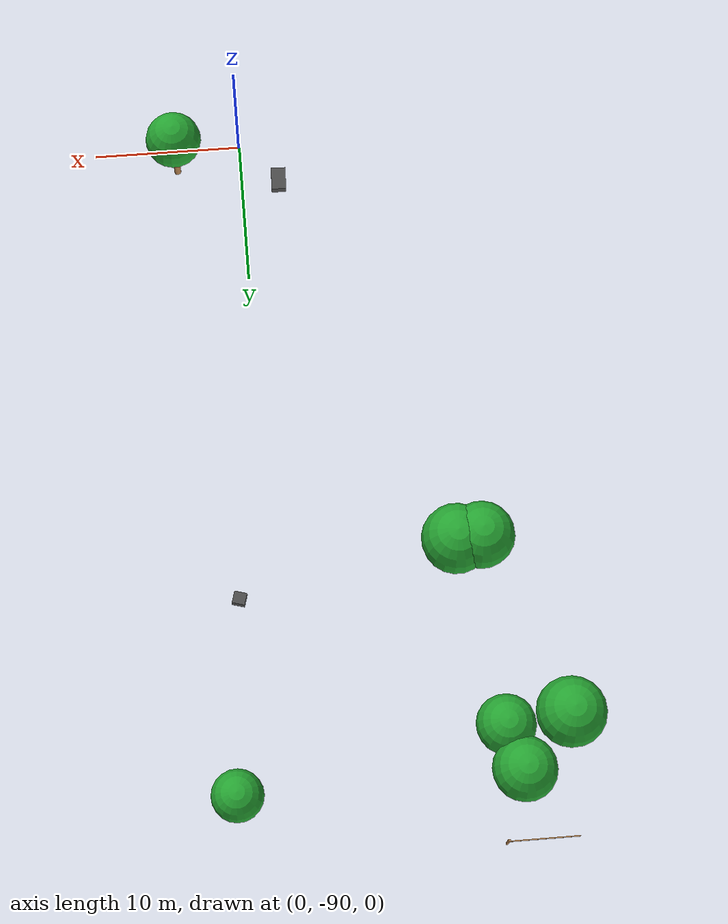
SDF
<sdf version="1.6">
 <world name="outdoor_v2">
  <include><uri>model://sun</uri></include>
  <model name="tree_43">
   <static>true</static>
   <pose>-12.95 -43.45 10.31 0 0 5.241</pose>
   <link name="link">
    <collision name="trunk_c">
     <pose>0 0 1.5 0 0 0</pose>
     <geometry><cylinder><radius>0.22</radius><length>3.0</length></cylinder></geometry>
    </collision>
    <visual name="trunk_v">
     <pose>0 0 1.5 0 0 0</pose>
     <geometry><cylinder><radius>0.22</radius><length>3.0</length></cylinder></geometry>
     <material>
      <script><uri>file://media/materials/scripts/gazebo.material</uri><name>Gazebo/Wood</name></script>
     </material>
    </visual>
    <collision name="canopy_c">
     <pose>0 0 4.5 0 0 0</pose>
     <geometry><sphere><radius>1.80</radius></sphere></geometry>
    </collision>
    <visual name="canopy_v">
     <pose>0 0 4.5 0 0 0</pose>
     <geometry><sphere><radius>1.80</radius></sphere></geometry>
     <material>
      <script><uri>file://media/materials/scripts/gazebo.material</uri><name>Gazebo/Green</name></script>
     </material>
    </visual>
   </link>
  </model>
  <model name="tree_45">
   <static>true</static>
   <pose>-12.20 -57.08 8.88 0 0 6.170</pose>
   <link name="link">
    <collision name="trunk_c">
     <pose>0 0 1.5 0 0 0</pose>
     <geometry><cylinder><radius>0.22</radius><length>3.0</length></cylinder></geometry>
    </collision>
    <visual name="trunk_v">
     <pose>0 0 1.5 0 0 0</pose>
     <geometry><cylinder><radius>0.22</radius><length>3.0</length></cylinder></geometry>
     <material>
      <script><uri>file://media/materials/scripts/gazebo.material</uri><name>Gazebo/Wood</name></script>
     </material>
    </visual>
    <collision name="canopy_c">
     <pose>0 0 4.5 0 0 0</pose>
     <geometry><sphere><radius>1.95</radius></sphere></geometry>
    </collision>
    <visual name="canopy_v">
     <pose>0 0 4.5 0 0 0</pose>
     <geometry><sphere><radius>1.95</radius></sphere></geometry>
     <material>
      <script><uri>file://media/materials/scripts/gazebo.material</uri><name>Gazebo/Green</name></script>
     </material>
    </visual>
   </link>
  </model>
  <model name="tree_46">
   <static>true</static>
   <pose>-12.23 -45.96 10.10 0 0 5.227</pose>
   <link name="link">
    <collision name="trunk_c">
     <pose>0 0 1.5 0 0 0</pose>
     <geometry><cylinder><radius>0.22</radius><length>3.0</length></cylinder></geometry>
    </collision>
    <visual name="trunk_v">
     <pose>0 0 1.5 0 0 0</pose>
     <geometry><cylinder><radius>0.22</radius><length>3.0</length></cylinder></geometry>
     <material>
      <script><uri>file://media/materials/scripts/gazebo.material</uri><name>Gazebo/Wood</name></script>
     </material>
    </visual>
    <collision name="canopy_c">
     <pose>0 0 4.5 0 0 0</pose>
     <geometry><sphere><radius>1.67</radius></sphere></geometry>
    </collision>
    <visual name="canopy_v">
     <pose>0 0 4.5 0 0 0</pose>
     <geometry><sphere><radius>1.67</radius></sphere></geometry>
     <material>
      <script><uri>file://media/materials/scripts/gazebo.material</uri><name>Gazebo/Green</name></script>
     </material>
    </visual>
   </link>
  </model>
  <model name="tree_47">
   <static>true</static>
   <pose>-15.88 -46.36 10.14 0 0 3.994</pose>
   <link name="link">
    <collision name="trunk_c">
     <pose>0 0 1.5 0 0 0</pose>
     <geometry><cylinder><radius>0.22</radius><length>3.0</length></cylinder></geometry>
    </collision>
    <visual name="trunk_v">
     <pose>0 0 1.5 0 0 0</pose>
     <geometry><cylinder><radius>0.22</radius><length>3.0</length></cylinder></geometry>
     <material>
      <script><uri>file://media/materials/scripts/gazebo.material</uri><name>Gazebo/Wood</name></script>
     </material>
    </visual>
    <collision name="canopy_c">
     <pose>0 0 4.5 0 0 0</pose>
     <geometry><sphere><radius>1.97</radius></sphere></geometry>
    </collision>
    <visual name="canopy_v">
     <pose>0 0 4.5 0 0 0</pose>
     <geometry><sphere><radius>1.97</radius></sphere></geometry>
     <material>
      <script><uri>file://media/materials/scripts/gazebo.material</uri><name>Gazebo/Green</name></script>
     </material>
    </visual>
   </link>
  </model>
  <model name="tree_50">
   <static>true</static>
   <pose>2.68 -43.26 10.02 0 0 4.653</pose>
   <link name="link">
    <collision name="trunk_c">
     <pose>0 0 1.5 0 0 0</pose>
     <geometry><cylinder><radius>0.22</radius><length>3.0</length></cylinder></geometry>
    </collision>
    <visual name="trunk_v">
     <pose>0 0 1.5 0 0 0</pose>
     <geometry><cylinder><radius>0.22</radius><length>3.0</length></cylinder></geometry>
     <material>
      <script><uri>file://media/materials/scripts/gazebo.material</uri><name>Gazebo/Wood</name></script>
     </material>
    </visual>
    <collision name="canopy_c">
     <pose>0 0 4.5 0 0 0</pose>
     <geometry><sphere><radius>1.46</radius></sphere></geometry>
    </collision>
    <visual name="canopy_v">
     <pose>0 0 4.5 0 0 0</pose>
     <geometry><sphere><radius>1.46</radius></sphere></geometry>
     <material>
      <script><uri>file://media/materials/scripts/gazebo.material</uri><name>Gazebo/Green</name></script>
     </material>
    </visual>
   </link>
  </model>
  <model name="tree_78">
   <static>true</static>
   <pose>4.23 -86.63 3.59 0 0 5.243</pose>
   <link name="link">
    <collision name="trunk_c">
     <pose>0 0 1.5 0 0 0</pose>
     <geometry><cylinder><radius>0.22</radius><length>3.0</length></cylinder></geometry>
    </collision>
    <visual name="trunk_v">
     <pose>0 0 1.5 0 0 0</pose>
     <geometry><cylinder><radius>0.22</radius><length>3.0</length></cylinder></geometry>
     <material>
      <script><uri>file://media/materials/scripts/gazebo.material</uri><name>Gazebo/Wood</name></script>
     </material>
    </visual>
    <collision name="canopy_c">
     <pose>0 0 4.5 0 0 0</pose>
     <geometry><sphere><radius>1.80</radius></sphere></geometry>
    </collision>
    <visual name="canopy_v">
     <pose>0 0 4.5 0 0 0</pose>
     <geometry><sphere><radius>1.80</radius></sphere></geometry>
     <material>
      <script><uri>file://media/materials/scripts/gazebo.material</uri><name>Gazebo/Green</name></script>
     </material>
    </visual>
   </link>
  </model>
  <model name="tree_79">
   <static>true</static>
   <pose>-10.78 -57.04 8.65 0 0 5.190</pose>
   <link name="link">
    <collision name="trunk_c">
     <pose>0 0 1.5 0 0 0</pose>
     <geometry><cylinder><radius>0.22</radius><length>3.0</length></cylinder></geometry>
    </collision>
    <visual name="trunk_v">
     <pose>0 0 1.5 0 0 0</pose>
     <geometry><cylinder><radius>0.22</radius><length>3.0</length></cylinder></geometry>
     <material>
      <script><uri>file://media/materials/scripts/gazebo.material</uri><name>Gazebo/Wood</name></script>
     </material>
    </visual>
    <collision name="canopy_c">
     <pose>0 0 4.5 0 0 0</pose>
     <geometry><sphere><radius>2.04</radius></sphere></geometry>
    </collision>
    <visual name="canopy_v">
     <pose>0 0 4.5 0 0 0</pose>
     <geometry><sphere><radius>2.04</radius></sphere></geometry>
     <material>
      <script><uri>file://media/materials/scripts/gazebo.material</uri><name>Gazebo/Green</name></script>
     </material>
    </visual>
   </link>
  </model>
  <model name="rock_15">
   <static>true</static>
   <pose>-2.49 -85.53 3.52 0 0 6.257</pose>
   <link name="link">
    <collision name="rock_c"><geometry><box><size>0.96 1.56 0.51</size></box></geometry></collision>
    <visual name="rock_v">
     <geometry><box><size>0.96 1.56 0.51</size></box></geometry>
     <material>
      <script><uri>file://media/materials/scripts/gazebo.material</uri><name>Gazebo/DarkGrey</name></script>
     </material>
    </visual>
   </link>
  </model>
  <model name="rock_29">
   <static>true</static>
   <pose>1.97 -55.83 7.62 0 0 6.001</pose>
   <link name="link">
    <collision name="rock_c"><geometry><box><size>0.77 0.73 0.59</size></box></geometry></collision>
    <visual name="rock_v">
     <geometry><box><size>0.77 0.73 0.59</size></box></geometry>
     <material>
      <script><uri>file://media/materials/scripts/gazebo.material</uri><name>Gazebo/DarkGrey</name></script>
     </material>
    </visual>
   </link>
  </model>
  <model name="rail_6">
   <static>true</static>
   <pose>-14.00 -40.00 10.47 0 0 0.000</pose>
   <link name="link">
    <collision name="rail_c">
     <pose>0 0 1.1 0 0 0</pose>
     <geometry><box><size>4.0 0.06 0.06</size></box></geometry>
    </collision>
    <visual name="rail_v">
     <pose>0 0 1.1 0 0 0</pose>
     <geometry><box><size>4.0 0.06 0.06</size></box></geometry>
     <material>
      <script><uri>file://media/materials/scripts/gazebo.material</uri><name>Gazebo/Wood</name></script>
     </material>
    </visual>
   </link>
  </model>
  <model name="post_7">
   <static>true</static>
   <pose>-12.00 -40.00 10.60 0 0 0.000</pose>
   <link name="link">
    <collision name="post_c">
     <pose>0 0 0.7 0 0 0</pose>
     <geometry><box><size>0.12 0.12 1.4</size></box></geometry>
    </collision>
    <visual name="post_v">
     <pose>0 0 0.7 0 0 0</pose>
     <geometry><box><size>0.12 0.12 1.4</size></box></geometry>
     <material>
      <script><uri>file://media/materials/scripts/gazebo.material</uri><name>Gazebo/Wood</name></script>
     </material>
    </visual>
   </link>
  </model>
 </world>
</sdf>
